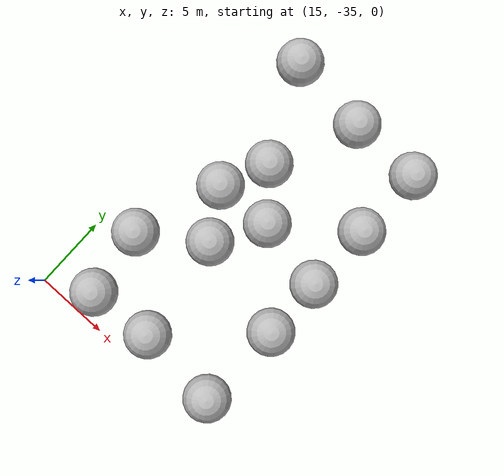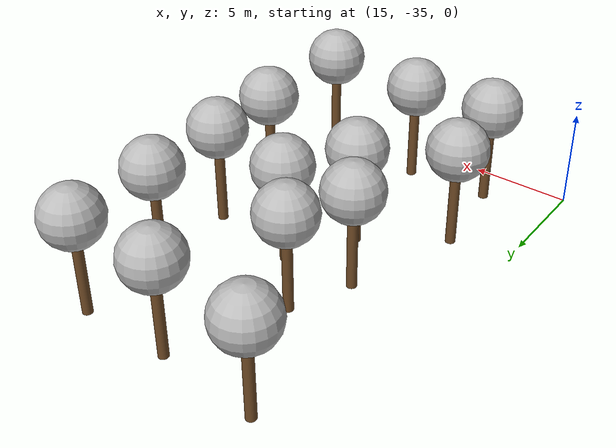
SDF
<sdf version="1.7">
 <world name="default">
  <model name="tree_red_1">
   <static>1</static>
   <link name="link">
    <pose>0 0 0.1 0 -0 0</pose>
    <inertial>
     <mass>666</mass>
     <inertia>
      <ixx>0.0861167</ixx>
      <ixy>0</ixy>
      <ixz>0</ixz>
      <iyy>0.0861167</iyy>
      <iyz>0</iyz>
      <izz>0.0861167</izz>
     </inertia>
    </inertial>
    <collision name="collision_trunk">
     <pose>0 0 2 0 -0 0</pose>
     <geometry><cylinder><radius>0.25</radius><length>4</length></cylinder></geometry>
     <surface>
      <contact>
       <poissons_ratio>0.347</poissons_ratio>
       <elastic_modulus>8.8e+09</elastic_modulus>
       <ode><kp>100000</kp><kd>100</kd><max_vel>100</max_vel><min_depth>0.001</min_depth></ode>
      </contact>
      <friction>
       <torsional>
        <coefficient>1</coefficient>
        <use_patch_radius>0</use_patch_radius>
        <surface_radius>0.01</surface_radius>
       </torsional>
      </friction>
     </surface>
    </collision>
    <collision name="collision_treetop">
     <pose>0 0 5.2 0 -0 0</pose>
     <geometry><sphere><radius>1.5</radius></sphere></geometry>
     <surface>
      <contact>
       <poissons_ratio>0.347</poissons_ratio>
       <elastic_modulus>8.8e+09</elastic_modulus>
       <ode><kp>100000</kp><kd>100</kd><max_vel>100</max_vel><min_depth>0.001</min_depth></ode>
      </contact>
      <friction>
       <torsional>
        <coefficient>1</coefficient>
        <use_patch_radius>0</use_patch_radius>
        <surface_radius>0.01</surface_radius>
       </torsional>
      </friction>
     </surface>
    </collision>
    <visual name="trunk">
     <pose>0 0 2 0 -0 0</pose>
     <geometry><cylinder><radius>0.25</radius><length>4</length></cylinder></geometry>
     <material>
      <script>
       <uri>model://MRS_tree_simples_fire/scripts</uri>
       <uri>model://MRS_tree_simples_fire/materials/textures</uri>
       <name>MRS_tree_simples_fire/Trunk</name>
      </script>
     </material>
    </visual>
    <visual name="treetop">
     <pose>0 0 5.2 0 -0 0</pose>
     <geometry><sphere><radius>1.5</radius></sphere></geometry>
     <material>
      <script>
       <uri>model://MRS_tree_simples_fire/scripts</uri>
       <uri>model://MRS_tree_simples_fire/materials/textures</uri>
       <name>MRS_tree_simples_fire/Treetop</name>
      </script>
     </material>
    </visual>
   </link>
   <pose>19.8045 -22.7168 0 0 -0 0</pose>
  </model>
  <model name="tree_yellow">
   <static>1</static>
   <link name="link">
    <pose>0 0 0.1 0 -0 0</pose>
    <inertial>
     <mass>666</mass>
     <inertia>
      <ixx>0.0861167</ixx>
      <ixy>0</ixy>
      <ixz>0</ixz>
      <iyy>0.0861167</iyy>
      <iyz>0</iyz>
      <izz>0.0861167</izz>
     </inertia>
    </inertial>
    <collision name="collision_trunk">
     <pose>0 0 2 0 -0 0</pose>
     <geometry><cylinder><radius>0.25</radius><length>4</length></cylinder></geometry>
     <surface>
      <contact>
       <poissons_ratio>0.347</poissons_ratio>
       <elastic_modulus>8.8e+09</elastic_modulus>
       <ode><kp>100000</kp><kd>100</kd><max_vel>100</max_vel><min_depth>0.001</min_depth></ode>
      </contact>
      <friction>
       <torsional>
        <coefficient>1</coefficient>
        <use_patch_radius>0</use_patch_radius>
        <surface_radius>0.01</surface_radius>
       </torsional>
      </friction>
     </surface>
    </collision>
    <collision name="collision_treetop">
     <pose>0 0 5.2 0 -0 0</pose>
     <geometry><sphere><radius>1.5</radius></sphere></geometry>
     <surface>
      <contact>
       <poissons_ratio>0.347</poissons_ratio>
       <elastic_modulus>8.8e+09</elastic_modulus>
       <ode><kp>100000</kp><kd>100</kd><max_vel>100</max_vel><min_depth>0.001</min_depth></ode>
      </contact>
      <friction>
       <torsional>
        <coefficient>1</coefficient>
        <use_patch_radius>0</use_patch_radius>
        <surface_radius>0.01</surface_radius>
       </torsional>
      </friction>
     </surface>
    </collision>
    <visual name="trunk">
     <pose>0 0 2 0 -0 0</pose>
     <geometry><cylinder><radius>0.25</radius><length>4</length></cylinder></geometry>
     <material>
      <script>
       <uri>model://MRS_tree_simples_close/scripts</uri>
       <uri>model://MRS_tree_simples_close/materials/textures</uri>
       <name>MRS_tree_simples_close/Trunk</name>
      </script>
     </material>
    </visual>
    <visual name="treetop">
     <pose>0 0 5.2 0 -0 0</pose>
     <geometry><sphere><radius>1.5</radius></sphere></geometry>
     <material>
      <script>
       <uri>model://MRS_tree_simples_close/scripts</uri>
       <uri>model://MRS_tree_simples_close/materials/textures</uri>
       <name>MRS_tree_simples_close/Treetop</name>
      </script>
     </material>
    </visual>
   </link>
   <pose>21.1239 -19.7072 0 0 -0 0</pose>
  </model>
  <model name="tree_yellow_0">
   <static>1</static>
   <link name="link">
    <pose>0 0 0.1 0 -0 0</pose>
    <inertial>
     <mass>666</mass>
     <inertia>
      <ixx>0.0861167</ixx>
      <ixy>0</ixy>
      <ixz>0</ixz>
      <iyy>0.0861167</iyy>
      <iyz>0</iyz>
      <izz>0.0861167</izz>
     </inertia>
    </inertial>
    <collision name="collision_trunk">
     <pose>0 0 2 0 -0 0</pose>
     <geometry><cylinder><radius>0.25</radius><length>4</length></cylinder></geometry>
     <surface>
      <contact>
       <poissons_ratio>0.347</poissons_ratio>
       <elastic_modulus>8.8e+09</elastic_modulus>
       <ode><kp>100000</kp><kd>100</kd><max_vel>100</max_vel><min_depth>0.001</min_depth></ode>
      </contact>
      <friction>
       <torsional>
        <coefficient>1</coefficient>
        <use_patch_radius>0</use_patch_radius>
        <surface_radius>0.01</surface_radius>
       </torsional>
      </friction>
     </surface>
    </collision>
    <collision name="collision_treetop">
     <pose>0 0 5.2 0 -0 0</pose>
     <geometry><sphere><radius>1.5</radius></sphere></geometry>
     <surface>
      <contact>
       <poissons_ratio>0.347</poissons_ratio>
       <elastic_modulus>8.8e+09</elastic_modulus>
       <ode><kp>100000</kp><kd>100</kd><max_vel>100</max_vel><min_depth>0.001</min_depth></ode>
      </contact>
      <friction>
       <torsional>
        <coefficient>1</coefficient>
        <use_patch_radius>0</use_patch_radius>
        <surface_radius>0.01</surface_radius>
       </torsional>
      </friction>
     </surface>
    </collision>
    <visual name="trunk">
     <pose>0 0 2 0 -0 0</pose>
     <geometry><cylinder><radius>0.25</radius><length>4</length></cylinder></geometry>
     <material>
      <script>
       <uri>model://MRS_tree_simples_close/scripts</uri>
       <uri>model://MRS_tree_simples_close/materials/textures</uri>
       <name>MRS_tree_simples_close/Trunk</name>
      </script>
     </material>
    </visual>
    <visual name="treetop">
     <pose>0 0 5.2 0 -0 0</pose>
     <geometry><sphere><radius>1.5</radius></sphere></geometry>
     <material>
      <script>
       <uri>model://MRS_tree_simples_close/scripts</uri>
       <uri>model://MRS_tree_simples_close/materials/textures</uri>
       <name>MRS_tree_simples_close/Treetop</name>
      </script>
     </material>
    </visual>
   </link>
   <pose>23.5192 -22.5214 0 0 -0 0</pose>
  </model>
  <model name="tree_yellow_3">
   <static>1</static>
   <link name="link">
    <pose>0 0 0.1 0 -0 0</pose>
    <inertial>
     <mass>666</mass>
     <inertia>
      <ixx>0.0861167</ixx>
      <ixy>0</ixy>
      <ixz>0</ixz>
      <iyy>0.0861167</iyy>
      <iyz>0</iyz>
      <izz>0.0861167</izz>
     </inertia>
    </inertial>
    <collision name="collision_trunk">
     <pose>0 0 2 0 -0 0</pose>
     <geometry><cylinder><radius>0.25</radius><length>4</length></cylinder></geometry>
     <surface>
      <contact>
       <poissons_ratio>0.347</poissons_ratio>
       <elastic_modulus>8.8e+09</elastic_modulus>
       <ode><kp>100000</kp><kd>100</kd><max_vel>100</max_vel><min_depth>0.001</min_depth></ode>
      </contact>
      <friction>
       <torsional>
        <coefficient>1</coefficient>
        <use_patch_radius>0</use_patch_radius>
        <surface_radius>0.01</surface_radius>
       </torsional>
      </friction>
     </surface>
    </collision>
    <collision name="collision_treetop">
     <pose>0 0 5.2 0 -0 0</pose>
     <geometry><sphere><radius>1.5</radius></sphere></geometry>
     <surface>
      <contact>
       <poissons_ratio>0.347</poissons_ratio>
       <elastic_modulus>8.8e+09</elastic_modulus>
       <ode><kp>100000</kp><kd>100</kd><max_vel>100</max_vel><min_depth>0.001</min_depth></ode>
      </contact>
      <friction>
       <torsional>
        <coefficient>1</coefficient>
        <use_patch_radius>0</use_patch_radius>
        <surface_radius>0.01</surface_radius>
       </torsional>
      </friction>
     </surface>
    </collision>
    <visual name="trunk">
     <pose>0 0 2 0 -0 0</pose>
     <geometry><cylinder><radius>0.25</radius><length>4</length></cylinder></geometry>
     <material>
      <script>
       <uri>model://MRS_tree_simples_close/scripts</uri>
       <uri>model://MRS_tree_simples_close/materials/textures</uri>
       <name>MRS_tree_simples_close/Trunk</name>
      </script>
     </material>
    </visual>
    <visual name="treetop">
     <pose>0 0 5.2 0 -0 0</pose>
     <geometry><sphere><radius>1.5</radius></sphere></geometry>
     <material>
      <script>
       <uri>model://MRS_tree_simples_close/scripts</uri>
       <uri>model://MRS_tree_simples_close/materials/textures</uri>
       <name>MRS_tree_simples_close/Treetop</name>
      </script>
     </material>
    </visual>
   </link>
   <pose>21.673 -25.7191 0 0 -0 0</pose>
  </model>
  <model name="tree_yellow_5">
   <static>1</static>
   <link name="link">
    <pose>0 0 0.1 0 -0 0</pose>
    <inertial>
     <mass>666</mass>
     <inertia>
      <ixx>0.0861167</ixx>
      <ixy>0</ixy>
      <ixz>0</ixz>
      <iyy>0.0861167</iyy>
      <iyz>0</iyz>
      <izz>0.0861167</izz>
     </inertia>
    </inertial>
    <collision name="collision_trunk">
     <pose>0 0 2 0 -0 0</pose>
     <geometry><cylinder><radius>0.25</radius><length>4</length></cylinder></geometry>
     <surface>
      <contact>
       <poissons_ratio>0.347</poissons_ratio>
       <elastic_modulus>8.8e+09</elastic_modulus>
       <ode><kp>100000</kp><kd>100</kd><max_vel>100</max_vel><min_depth>0.001</min_depth></ode>
      </contact>
      <friction>
       <torsional>
        <coefficient>1</coefficient>
        <use_patch_radius>0</use_patch_radius>
        <surface_radius>0.01</surface_radius>
       </torsional>
      </friction>
     </surface>
    </collision>
    <collision name="collision_treetop">
     <pose>0 0 5.2 0 -0 0</pose>
     <geometry><sphere><radius>1.5</radius></sphere></geometry>
     <surface>
      <contact>
       <poissons_ratio>0.347</poissons_ratio>
       <elastic_modulus>8.8e+09</elastic_modulus>
       <ode><kp>100000</kp><kd>100</kd><max_vel>100</max_vel><min_depth>0.001</min_depth></ode>
      </contact>
      <friction>
       <torsional>
        <coefficient>1</coefficient>
        <use_patch_radius>0</use_patch_radius>
        <surface_radius>0.01</surface_radius>
       </torsional>
      </friction>
     </surface>
    </collision>
    <visual name="trunk">
     <pose>0 0 2 0 -0 0</pose>
     <geometry><cylinder><radius>0.25</radius><length>4</length></cylinder></geometry>
     <material>
      <script>
       <uri>model://MRS_tree_simples_close/scripts</uri>
       <uri>model://MRS_tree_simples_close/materials/textures</uri>
       <name>MRS_tree_simples_close/Trunk</name>
      </script>
     </material>
    </visual>
    <visual name="treetop">
     <pose>0 0 5.2 0 -0 0</pose>
     <geometry><sphere><radius>1.5</radius></sphere></geometry>
     <material>
      <script>
       <uri>model://MRS_tree_simples_close/scripts</uri>
       <uri>model://MRS_tree_simples_close/materials/textures</uri>
       <name>MRS_tree_simples_close/Treetop</name>
      </script>
     </material>
    </visual>
   </link>
   <pose>17.8933 -28.3603 0 0 -0 0</pose>
  </model>
  <model name="tree_green">
   <static>1</static>
   <link name="link">
    <pose>0 0 0.1 0 -0 0</pose>
    <inertial>
     <mass>666</mass>
     <inertia>
      <ixx>0.0861167</ixx>
      <ixy>0</ixy>
      <ixz>0</ixz>
      <iyy>0.0861167</iyy>
      <iyz>0</iyz>
      <izz>0.0861167</izz>
     </inertia>
    </inertial>
    <collision name="collision_trunk">
     <pose>0 0 2 0 -0 0</pose>
     <geometry><cylinder><radius>0.25</radius><length>4</length></cylinder></geometry>
     <surface>
      <contact>
       <poissons_ratio>0.347</poissons_ratio>
       <elastic_modulus>8.8e+09</elastic_modulus>
       <ode><kp>100000</kp><kd>100</kd><max_vel>100</max_vel><min_depth>0.001</min_depth></ode>
      </contact>
      <friction>
       <torsional>
        <coefficient>1</coefficient>
        <use_patch_radius>0</use_patch_radius>
        <surface_radius>0.01</surface_radius>
       </torsional>
      </friction>
     </surface>
    </collision>
    <collision name="collision_treetop">
     <pose>0 0 5.2 0 -0 0</pose>
     <geometry><sphere><radius>1.5</radius></sphere></geometry>
     <surface>
      <contact>
       <poissons_ratio>0.347</poissons_ratio>
       <elastic_modulus>8.8e+09</elastic_modulus>
       <ode><kp>100000</kp><kd>100</kd><max_vel>100</max_vel><min_depth>0.001</min_depth></ode>
      </contact>
      <friction>
       <torsional>
        <coefficient>1</coefficient>
        <use_patch_radius>0</use_patch_radius>
        <surface_radius>0.01</surface_radius>
       </torsional>
      </friction>
     </surface>
    </collision>
    <visual name="trunk">
     <pose>0 0 2 0 -0 0</pose>
     <geometry><cylinder><radius>0.25</radius><length>4</length></cylinder></geometry>
     <material>
      <script>
       <uri>model://MRS_tree_simple/scripts</uri>
       <uri>model://MRS_tree_simple/materials/textures</uri>
       <name>MRS_tree_simple/Trunk</name>
      </script>
     </material>
    </visual>
    <visual name="treetop">
     <pose>0 0 5.2 0 -0 0</pose>
     <geometry><sphere><radius>1.5</radius></sphere></geometry>
     <material>
      <script>
       <uri>model://MRS_tree_simple/scripts</uri>
       <uri>model://MRS_tree_simple/materials/textures</uri>
       <name>MRS_tree_simple/Treetop</name>
      </script>
     </material>
    </visual>
   </link>
   <pose>18.3034 -13.7371 0 0 -0 0</pose>
  </model>
  <model name="tree_green_0">
   <static>1</static>
   <link name="link">
    <pose>0 0 0.1 0 -0 0</pose>
    <inertial>
     <mass>666</mass>
     <inertia>
      <ixx>0.0861167</ixx>
      <ixy>0</ixy>
      <ixz>0</ixz>
      <iyy>0.0861167</iyy>
      <iyz>0</iyz>
      <izz>0.0861167</izz>
     </inertia>
    </inertial>
    <collision name="collision_trunk">
     <pose>0 0 2 0 -0 0</pose>
     <geometry><cylinder><radius>0.25</radius><length>4</length></cylinder></geometry>
     <surface>
      <contact>
       <poissons_ratio>0.347</poissons_ratio>
       <elastic_modulus>8.8e+09</elastic_modulus>
       <ode><kp>100000</kp><kd>100</kd><max_vel>100</max_vel><min_depth>0.001</min_depth></ode>
      </contact>
      <friction>
       <torsional>
        <coefficient>1</coefficient>
        <use_patch_radius>0</use_patch_radius>
        <surface_radius>0.01</surface_radius>
       </torsional>
      </friction>
     </surface>
    </collision>
    <collision name="collision_treetop">
     <pose>0 0 5.2 0 -0 0</pose>
     <geometry><sphere><radius>1.5</radius></sphere></geometry>
     <surface>
      <contact>
       <poissons_ratio>0.347</poissons_ratio>
       <elastic_modulus>8.8e+09</elastic_modulus>
       <ode><kp>100000</kp><kd>100</kd><max_vel>100</max_vel><min_depth>0.001</min_depth></ode>
      </contact>
      <friction>
       <torsional>
        <coefficient>1</coefficient>
        <use_patch_radius>0</use_patch_radius>
        <surface_radius>0.01</surface_radius>
       </torsional>
      </friction>
     </surface>
    </collision>
    <visual name="trunk">
     <pose>0 0 2 0 -0 0</pose>
     <geometry><cylinder><radius>0.25</radius><length>4</length></cylinder></geometry>
     <material>
      <script>
       <uri>model://MRS_tree_simple/scripts</uri>
       <uri>model://MRS_tree_simple/materials/textures</uri>
       <name>MRS_tree_simple/Trunk</name>
      </script>
     </material>
    </visual>
    <visual name="treetop">
     <pose>0 0 5.2 0 -0 0</pose>
     <geometry><sphere><radius>1.5</radius></sphere></geometry>
     <material>
      <script>
       <uri>model://MRS_tree_simple/scripts</uri>
       <uri>model://MRS_tree_simple/materials/textures</uri>
       <name>MRS_tree_simple/Treetop</name>
      </script>
     </material>
    </visual>
   </link>
   <pose>23.4977 -14.2435 0 0 -0 0</pose>
  </model>
  <model name="tree_green_1">
   <static>1</static>
   <link name="link">
    <pose>0 0 0.1 0 -0 0</pose>
    <inertial>
     <mass>666</mass>
     <inertia>
      <ixx>0.0861167</ixx>
      <ixy>0</ixy>
      <ixz>0</ixz>
      <iyy>0.0861167</iyy>
      <iyz>0</iyz>
      <izz>0.0861167</izz>
     </inertia>
    </inertial>
    <collision name="collision_trunk">
     <pose>0 0 2 0 -0 0</pose>
     <geometry><cylinder><radius>0.25</radius><length>4</length></cylinder></geometry>
     <surface>
      <contact>
       <poissons_ratio>0.347</poissons_ratio>
       <elastic_modulus>8.8e+09</elastic_modulus>
       <ode><kp>100000</kp><kd>100</kd><max_vel>100</max_vel><min_depth>0.001</min_depth></ode>
      </contact>
      <friction>
       <torsional>
        <coefficient>1</coefficient>
        <use_patch_radius>0</use_patch_radius>
        <surface_radius>0.01</surface_radius>
       </torsional>
      </friction>
     </surface>
    </collision>
    <collision name="collision_treetop">
     <pose>0 0 5.2 0 -0 0</pose>
     <geometry><sphere><radius>1.5</radius></sphere></geometry>
     <surface>
      <contact>
       <poissons_ratio>0.347</poissons_ratio>
       <elastic_modulus>8.8e+09</elastic_modulus>
       <ode><kp>100000</kp><kd>100</kd><max_vel>100</max_vel><min_depth>0.001</min_depth></ode>
      </contact>
      <friction>
       <torsional>
        <coefficient>1</coefficient>
        <use_patch_radius>0</use_patch_radius>
        <surface_radius>0.01</surface_radius>
       </torsional>
      </friction>
     </surface>
    </collision>
    <visual name="trunk">
     <pose>0 0 2 0 -0 0</pose>
     <geometry><cylinder><radius>0.25</radius><length>4</length></cylinder></geometry>
     <material>
      <script>
       <uri>model://MRS_tree_simple/scripts</uri>
       <uri>model://MRS_tree_simple/materials/textures</uri>
       <name>MRS_tree_simple/Trunk</name>
      </script>
     </material>
    </visual>
    <visual name="treetop">
     <pose>0 0 5.2 0 -0 0</pose>
     <geometry><sphere><radius>1.5</radius></sphere></geometry>
     <material>
      <script>
       <uri>model://MRS_tree_simple/scripts</uri>
       <uri>model://MRS_tree_simple/materials/textures</uri>
       <name>MRS_tree_simple/Treetop</name>
      </script>
     </material>
    </visual>
   </link>
   <pose>28.1665 -14.2881 0 0 -0 0</pose>
  </model>
  <model name="tree_green_2">
   <static>1</static>
   <link name="link">
    <pose>0 0 0.1 0 -0 0</pose>
    <inertial>
     <mass>666</mass>
     <inertia>
      <ixx>0.0861167</ixx>
      <ixy>0</ixy>
      <ixz>0</ixz>
      <iyy>0.0861167</iyy>
      <iyz>0</iyz>
      <izz>0.0861167</izz>
     </inertia>
    </inertial>
    <collision name="collision_trunk">
     <pose>0 0 2 0 -0 0</pose>
     <geometry><cylinder><radius>0.25</radius><length>4</length></cylinder></geometry>
     <surface>
      <contact>
       <poissons_ratio>0.347</poissons_ratio>
       <elastic_modulus>8.8e+09</elastic_modulus>
       <ode><kp>100000</kp><kd>100</kd><max_vel>100</max_vel><min_depth>0.001</min_depth></ode>
      </contact>
      <friction>
       <torsional>
        <coefficient>1</coefficient>
        <use_patch_radius>0</use_patch_radius>
        <surface_radius>0.01</surface_radius>
       </torsional>
      </friction>
     </surface>
    </collision>
    <collision name="collision_treetop">
     <pose>0 0 5.2 0 -0 0</pose>
     <geometry><sphere><radius>1.5</radius></sphere></geometry>
     <surface>
      <contact>
       <poissons_ratio>0.347</poissons_ratio>
       <elastic_modulus>8.8e+09</elastic_modulus>
       <ode><kp>100000</kp><kd>100</kd><max_vel>100</max_vel><min_depth>0.001</min_depth></ode>
      </contact>
      <friction>
       <torsional>
        <coefficient>1</coefficient>
        <use_patch_radius>0</use_patch_radius>
        <surface_radius>0.01</surface_radius>
       </torsional>
      </friction>
     </surface>
    </collision>
    <visual name="trunk">
     <pose>0 0 2 0 -0 0</pose>
     <geometry><cylinder><radius>0.25</radius><length>4</length></cylinder></geometry>
     <material>
      <script>
       <uri>model://MRS_tree_simple/scripts</uri>
       <uri>model://MRS_tree_simple/materials/textures</uri>
       <name>MRS_tree_simple/Trunk</name>
      </script>
     </material>
    </visual>
    <visual name="treetop">
     <pose>0 0 5.2 0 -0 0</pose>
     <geometry><sphere><radius>1.5</radius></sphere></geometry>
     <material>
      <script>
       <uri>model://MRS_tree_simple/scripts</uri>
       <uri>model://MRS_tree_simple/materials/textures</uri>
       <name>MRS_tree_simple/Treetop</name>
      </script>
     </material>
    </visual>
   </link>
   <pose>28.1205 -23.3465 0 0 -0 0</pose>
  </model>
  <model name="tree_green_3">
   <static>1</static>
   <link name="link">
    <pose>0 0 0.1 0 -0 0</pose>
    <inertial>
     <mass>666</mass>
     <inertia>
      <ixx>0.0861167</ixx>
      <ixy>0</ixy>
      <ixz>0</ixz>
      <iyy>0.0861167</iyy>
      <iyz>0</iyz>
      <izz>0.0861167</izz>
     </inertia>
    </inertial>
    <collision name="collision_trunk">
     <pose>0 0 2 0 -0 0</pose>
     <geometry><cylinder><radius>0.25</radius><length>4</length></cylinder></geometry>
     <surface>
      <contact>
       <poissons_ratio>0.347</poissons_ratio>
       <elastic_modulus>8.8e+09</elastic_modulus>
       <ode><kp>100000</kp><kd>100</kd><max_vel>100</max_vel><min_depth>0.001</min_depth></ode>
      </contact>
      <friction>
       <torsional>
        <coefficient>1</coefficient>
        <use_patch_radius>0</use_patch_radius>
        <surface_radius>0.01</surface_radius>
       </torsional>
      </friction>
     </surface>
    </collision>
    <collision name="collision_treetop">
     <pose>0 0 5.2 0 -0 0</pose>
     <geometry><sphere><radius>1.5</radius></sphere></geometry>
     <surface>
      <contact>
       <poissons_ratio>0.347</poissons_ratio>
       <elastic_modulus>8.8e+09</elastic_modulus>
       <ode><kp>100000</kp><kd>100</kd><max_vel>100</max_vel><min_depth>0.001</min_depth></ode>
      </contact>
      <friction>
       <torsional>
        <coefficient>1</coefficient>
        <use_patch_radius>0</use_patch_radius>
        <surface_radius>0.01</surface_radius>
       </torsional>
      </friction>
     </surface>
    </collision>
    <visual name="trunk">
     <pose>0 0 2 0 -0 0</pose>
     <geometry><cylinder><radius>0.25</radius><length>4</length></cylinder></geometry>
     <material>
      <script>
       <uri>model://MRS_tree_simple/scripts</uri>
       <uri>model://MRS_tree_simple/materials/textures</uri>
       <name>MRS_tree_simple/Trunk</name>
      </script>
     </material>
    </visual>
    <visual name="treetop">
     <pose>0 0 5.2 0 -0 0</pose>
     <geometry><sphere><radius>1.5</radius></sphere></geometry>
     <material>
      <script>
       <uri>model://MRS_tree_simple/scripts</uri>
       <uri>model://MRS_tree_simple/materials/textures</uri>
       <name>MRS_tree_simple/Treetop</name>
      </script>
     </material>
    </visual>
   </link>
   <pose>28.149 -27.2805 0 0 -0 0</pose>
  </model>
  <model name="tree_green_4">
   <static>1</static>
   <link name="link">
    <pose>0 0 0.1 0 -0 0</pose>
    <inertial>
     <mass>666</mass>
     <inertia>
      <ixx>0.0861167</ixx>
      <ixy>0</ixy>
      <ixz>0</ixz>
      <iyy>0.0861167</iyy>
      <iyz>0</iyz>
      <izz>0.0861167</izz>
     </inertia>
    </inertial>
    <collision name="collision_trunk">
     <pose>0 0 2 0 -0 0</pose>
     <geometry><cylinder><radius>0.25</radius><length>4</length></cylinder></geometry>
     <surface>
      <contact>
       <poissons_ratio>0.347</poissons_ratio>
       <elastic_modulus>8.8e+09</elastic_modulus>
       <ode><kp>100000</kp><kd>100</kd><max_vel>100</max_vel><min_depth>0.001</min_depth></ode>
      </contact>
      <friction>
       <torsional>
        <coefficient>1</coefficient>
        <use_patch_radius>0</use_patch_radius>
        <surface_radius>0.01</surface_radius>
       </torsional>
      </friction>
     </surface>
    </collision>
    <collision name="collision_treetop">
     <pose>0 0 5.2 0 -0 0</pose>
     <geometry><sphere><radius>1.5</radius></sphere></geometry>
     <surface>
      <contact>
       <poissons_ratio>0.347</poissons_ratio>
       <elastic_modulus>8.8e+09</elastic_modulus>
       <ode><kp>100000</kp><kd>100</kd><max_vel>100</max_vel><min_depth>0.001</min_depth></ode>
      </contact>
      <friction>
       <torsional>
        <coefficient>1</coefficient>
        <use_patch_radius>0</use_patch_radius>
        <surface_radius>0.01</surface_radius>
       </torsional>
      </friction>
     </surface>
    </collision>
    <visual name="trunk">
     <pose>0 0 2 0 -0 0</pose>
     <geometry><cylinder><radius>0.25</radius><length>4</length></cylinder></geometry>
     <material>
      <script>
       <uri>model://MRS_tree_simple/scripts</uri>
       <uri>model://MRS_tree_simple/materials/textures</uri>
       <name>MRS_tree_simple/Trunk</name>
      </script>
     </material>
    </visual>
    <visual name="treetop">
     <pose>0 0 5.2 0 -0 0</pose>
     <geometry><sphere><radius>1.5</radius></sphere></geometry>
     <material>
      <script>
       <uri>model://MRS_tree_simple/scripts</uri>
       <uri>model://MRS_tree_simple/materials/textures</uri>
       <name>MRS_tree_simple/Treetop</name>
      </script>
     </material>
    </visual>
   </link>
   <pose>27.9805 -32.876 0 0 -0 0</pose>
  </model>
  <model name="tree_green_5">
   <static>1</static>
   <link name="link">
    <pose>0 0 0.1 0 -0 0</pose>
    <inertial>
     <mass>666</mass>
     <inertia>
      <ixx>0.0861167</ixx>
      <ixy>0</ixy>
      <ixz>0</ixz>
      <iyy>0.0861167</iyy>
      <iyz>0</iyz>
      <izz>0.0861167</izz>
     </inertia>
    </inertial>
    <collision name="collision_trunk">
     <pose>0 0 2 0 -0 0</pose>
     <geometry><cylinder><radius>0.25</radius><length>4</length></cylinder></geometry>
     <surface>
      <contact>
       <poissons_ratio>0.347</poissons_ratio>
       <elastic_modulus>8.8e+09</elastic_modulus>
       <ode><kp>100000</kp><kd>100</kd><max_vel>100</max_vel><min_depth>0.001</min_depth></ode>
      </contact>
      <friction>
       <torsional>
        <coefficient>1</coefficient>
        <use_patch_radius>0</use_patch_radius>
        <surface_radius>0.01</surface_radius>
       </torsional>
      </friction>
     </surface>
    </collision>
    <collision name="collision_treetop">
     <pose>0 0 5.2 0 -0 0</pose>
     <geometry><sphere><radius>1.5</radius></sphere></geometry>
     <surface>
      <contact>
       <poissons_ratio>0.347</poissons_ratio>
       <elastic_modulus>8.8e+09</elastic_modulus>
       <ode><kp>100000</kp><kd>100</kd><max_vel>100</max_vel><min_depth>0.001</min_depth></ode>
      </contact>
      <friction>
       <torsional>
        <coefficient>1</coefficient>
        <use_patch_radius>0</use_patch_radius>
        <surface_radius>0.01</surface_radius>
       </torsional>
      </friction>
     </surface>
    </collision>
    <visual name="trunk">
     <pose>0 0 2 0 -0 0</pose>
     <geometry><cylinder><radius>0.25</radius><length>4</length></cylinder></geometry>
     <material>
      <script>
       <uri>model://MRS_tree_simple/scripts</uri>
       <uri>model://MRS_tree_simple/materials/textures</uri>
       <name>MRS_tree_simple/Trunk</name>
      </script>
     </material>
    </visual>
    <visual name="treetop">
     <pose>0 0 5.2 0 -0 0</pose>
     <geometry><sphere><radius>1.5</radius></sphere></geometry>
     <material>
      <script>
       <uri>model://MRS_tree_simple/scripts</uri>
       <uri>model://MRS_tree_simple/materials/textures</uri>
       <name>MRS_tree_simple/Treetop</name>
      </script>
     </material>
    </visual>
   </link>
   <pose>22.6912 -32.4673 0 0 -0 0</pose>
  </model>
  <model name="tree_green_6">
   <static>1</static>
   <link name="link">
    <pose>0 0 0.1 0 -0 0</pose>
    <inertial>
     <mass>666</mass>
     <inertia>
      <ixx>0.0861167</ixx>
      <ixy>0</ixy>
      <ixz>0</ixz>
      <iyy>0.0861167</iyy>
      <iyz>0</iyz>
      <izz>0.0861167</izz>
     </inertia>
    </inertial>
    <collision name="collision_trunk">
     <pose>0 0 2 0 -0 0</pose>
     <geometry><cylinder><radius>0.25</radius><length>4</length></cylinder></geometry>
     <surface>
      <contact>
       <poissons_ratio>0.347</poissons_ratio>
       <elastic_modulus>8.8e+09</elastic_modulus>
       <ode><kp>100000</kp><kd>100</kd><max_vel>100</max_vel><min_depth>0.001</min_depth></ode>
      </contact>
      <friction>
       <torsional>
        <coefficient>1</coefficient>
        <use_patch_radius>0</use_patch_radius>
        <surface_radius>0.01</surface_radius>
       </torsional>
      </friction>
     </surface>
    </collision>
    <collision name="collision_treetop">
     <pose>0 0 5.2 0 -0 0</pose>
     <geometry><sphere><radius>1.5</radius></sphere></geometry>
     <surface>
      <contact>
       <poissons_ratio>0.347</poissons_ratio>
       <elastic_modulus>8.8e+09</elastic_modulus>
       <ode><kp>100000</kp><kd>100</kd><max_vel>100</max_vel><min_depth>0.001</min_depth></ode>
      </contact>
      <friction>
       <torsional>
        <coefficient>1</coefficient>
        <use_patch_radius>0</use_patch_radius>
        <surface_radius>0.01</surface_radius>
       </torsional>
      </friction>
     </surface>
    </collision>
    <visual name="trunk">
     <pose>0 0 2 0 -0 0</pose>
     <geometry><cylinder><radius>0.25</radius><length>4</length></cylinder></geometry>
     <material>
      <script>
       <uri>model://MRS_tree_simple/scripts</uri>
       <uri>model://MRS_tree_simple/materials/textures</uri>
       <name>MRS_tree_simple/Trunk</name>
      </script>
     </material>
    </visual>
    <visual name="treetop">
     <pose>0 0 5.2 0 -0 0</pose>
     <geometry><sphere><radius>1.5</radius></sphere></geometry>
     <material>
      <script>
       <uri>model://MRS_tree_simple/scripts</uri>
       <uri>model://MRS_tree_simple/materials/textures</uri>
       <name>MRS_tree_simple/Treetop</name>
      </script>
     </material>
    </visual>
   </link>
   <pose>18.5017 -32.7806 0 0 -0 0</pose>
  </model>
  <model name="tree_green_1_clone">
   <static>1</static>
   <link name="link">
    <pose>0 0 0.1 0 -0 0</pose>
    <inertial>
     <mass>666</mass>
     <inertia>
      <ixx>0.0861167</ixx>
      <ixy>0</ixy>
      <ixz>0</ixz>
      <iyy>0.0861167</iyy>
      <iyz>0</iyz>
      <izz>0.0861167</izz>
     </inertia>
    </inertial>
    <collision name="collision_trunk">
     <pose>0 0 2 0 -0 0</pose>
     <geometry><cylinder><radius>0.25</radius><length>4</length></cylinder></geometry>
     <surface>
      <contact>
       <poissons_ratio>0.347</poissons_ratio>
       <elastic_modulus>8.8e+09</elastic_modulus>
       <ode><kp>100000</kp><kd>100</kd><max_vel>100</max_vel><min_depth>0.001</min_depth></ode>
      </contact>
      <friction>
       <torsional>
        <coefficient>1</coefficient>
        <use_patch_radius>0</use_patch_radius>
        <surface_radius>0.01</surface_radius>
       </torsional>
      </friction>
     </surface>
    </collision>
    <collision name="collision_treetop">
     <pose>0 0 5.2 0 -0 0</pose>
     <geometry><sphere><radius>1.5</radius></sphere></geometry>
     <surface>
      <contact>
       <poissons_ratio>0.347</poissons_ratio>
       <elastic_modulus>8.8e+09</elastic_modulus>
       <ode><kp>100000</kp><kd>100</kd><max_vel>100</max_vel><min_depth>0.001</min_depth></ode>
      </contact>
      <friction>
       <torsional>
        <coefficient>1</coefficient>
        <use_patch_radius>0</use_patch_radius>
        <surface_radius>0.01</surface_radius>
       </torsional>
      </friction>
     </surface>
    </collision>
    <visual name="trunk">
     <pose>0 0 2 0 -0 0</pose>
     <geometry><cylinder><radius>0.25</radius><length>4</length></cylinder></geometry>
     <material>
      <script>
       <uri>model://MRS_tree_simple/scripts</uri>
       <uri>model://MRS_tree_simple/materials/textures</uri>
       <name>MRS_tree_simple/Trunk</name>
      </script>
     </material>
    </visual>
    <visual name="treetop">
     <pose>0 0 5.2 0 -0 0</pose>
     <geometry><sphere><radius>1.5</radius></sphere></geometry>
     <material>
      <script>
       <uri>model://MRS_tree_simple/scripts</uri>
       <uri>model://MRS_tree_simple/materials/textures</uri>
       <name>MRS_tree_simple/Treetop</name>
      </script>
     </material>
    </visual>
   </link>
   <pose>28.1306 -18.962 0 0 -0 0</pose>
  </model>
 </world>
</sdf>
